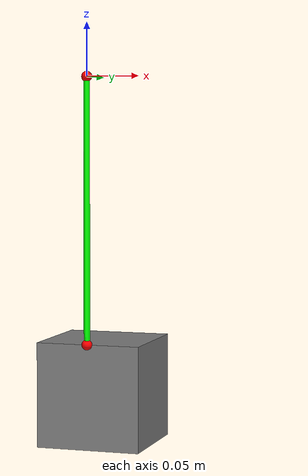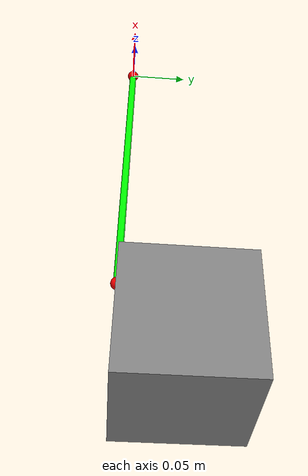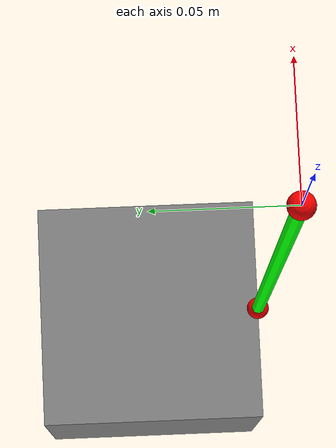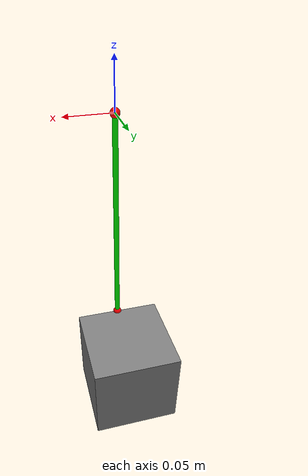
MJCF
<mujoco>
    <default>
        <site type="sphere" rgba="1 0 0 1" size="0.005"/>
        <tendon rgba="0 1 0 1" stiffness="1000" damping="100"/>
    </default>

    <visual>
        <headlight diffuse=".7 .7 .7"/>
    </visual>

    <worldbody>
        <site name="origin0" pos="0 0 0"/>
        <body name="mass" pos="0 0 -0.3">
            <freejoint/>
            <geom name="massgeom" type="box" size="0.05 0.05 0.05" pos="0 0.05 0" mass="1"/>
            <site name="insertion0" pos="0 0 0.05"/>
        </body>
    </worldbody>

    <tendon>
        <spatial name="rope0">
            <site site="origin0"/>
            <site site="insertion0"/>
        </spatial>
    </tendon>

    <sensor>
        <force name="tension0" site="origin0"/>
    </sensor>

</mujoco>
